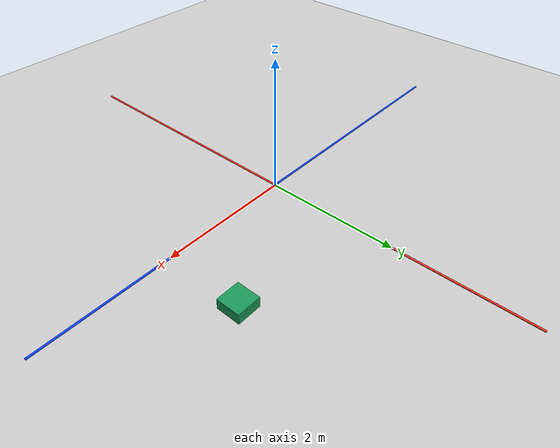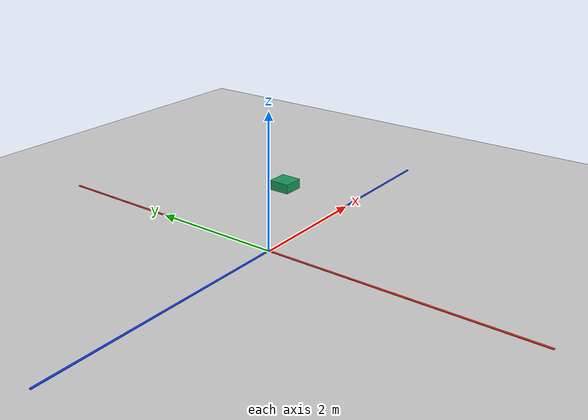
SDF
<?xml version="1.0" ?>
<sdf version="1.6">
  <world name="diffbot_world">
    <plugin name="gazebo_ros_init" filename="libgazebo_ros_init.so"/>
    <plugin name="gazebo_ros_factory" filename="libgazebo_ros_factory.so"/>

    <include>
      <uri>model://ground_plane</uri>
    </include>

    <include>
      <uri>model://sun</uri>
    </include>

    <model name="motion_reference_grid">
      <static>true</static>
      <pose>0 0 0.006 0 0 0</pose>
      <link name="grid_link">
        <visual name="center_line_x">
          <pose>0 0 0 0 0 0</pose>
          <geometry>
            <box><size>8 0.03 0.01</size></box>
          </geometry>
          <material><ambient>0.05 0.25 0.95 1</ambient><diffuse>0.05 0.25 0.95 1</diffuse></material>
        </visual>
        <visual name="center_line_y">
          <pose>0 0 0 0 0 0</pose>
          <geometry>
            <box><size>0.03 8 0.01</size></box>
          </geometry>
          <material><ambient>0.95 0.18 0.12 1</ambient><diffuse>0.95 0.18 0.12 1</diffuse></material>
        </visual>
      </link>
    </model>

    <model name="low_obstacle_demo">
      <static>true</static>
      <pose>2.0 1.2 0.08 0 0 0</pose>
      <link name="box_link">
        <collision name="collision">
          <geometry><box><size>0.35 0.35 0.16</size></box></geometry>
        </collision>
        <visual name="visual">
          <geometry><box><size>0.35 0.35 0.16</size></box></geometry>
          <material><ambient>0.1 0.6 0.35 1</ambient><diffuse>0.1 0.6 0.35 1</diffuse></material>
        </visual>
      </link>
    </model>
  </world>
</sdf>
